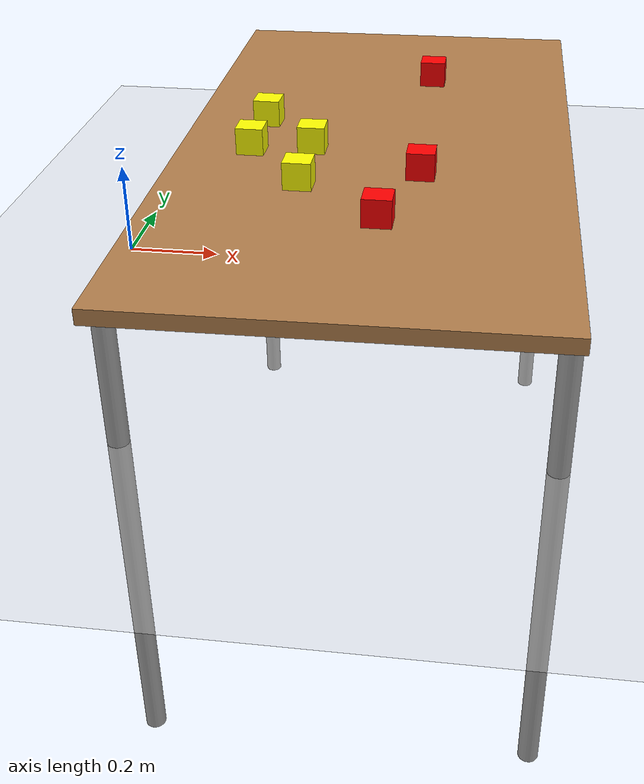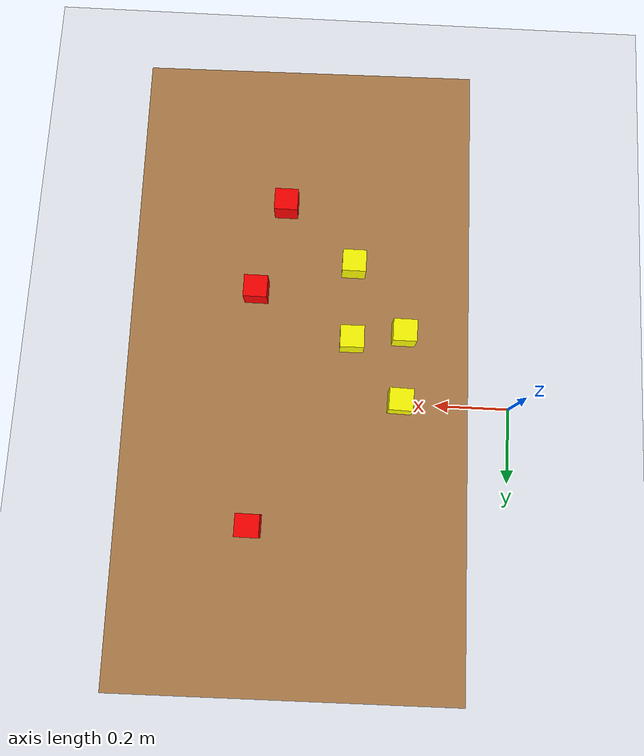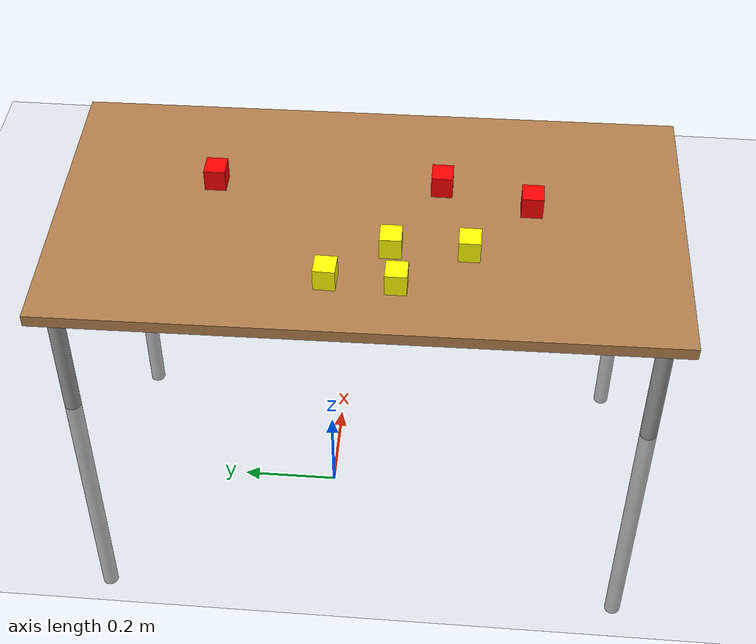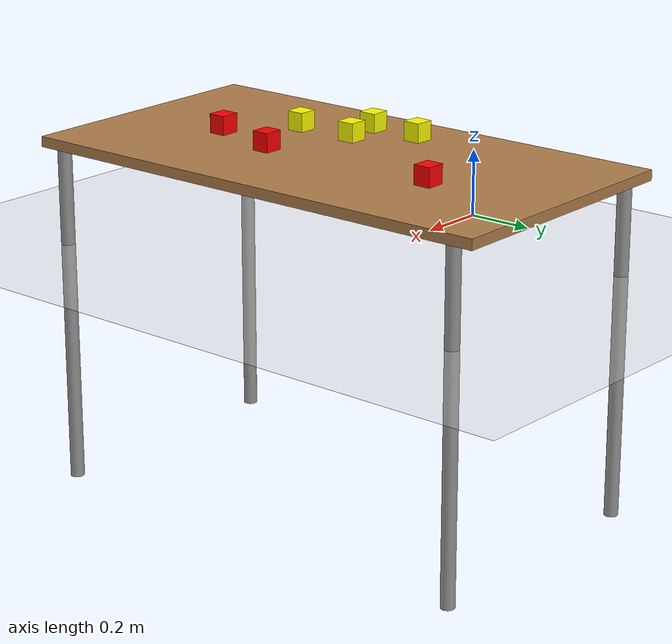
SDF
<sdf version="1.7">
 <world name="default">
  <light name="sun" type="directional">
   <pose>0 0 10 0 -0 0</pose>
   <diffuse>0.8 0.8 0.8 1</diffuse>
   <specular>0.2 0.2 0.2 1</specular>
   <attenuation>
    <range>1000</range>
    <constant>0.9</constant>
    <linear>0.01</linear>
    <quadratic>0.001</quadratic>
   </attenuation>
   <direction>-0.5 0.1 -0.9</direction>
   <spot><inner_angle>0</inner_angle><outer_angle>0</outer_angle><falloff>0</falloff></spot>
  </light>
  <model name="ground_plane">
   <static>1</static>
   <link name="link">
    <collision name="collision">
     <geometry><plane><normal>0 0 1</normal><size>100 100</size></plane></geometry>
     <surface>
      <contact><collide_bitmask>65535</collide_bitmask></contact>
      <friction><ode><mu>100</mu><mu2>50</mu2></ode></friction>
     </surface>
    </collision>
    <visual name="visual">
     <cast_shadows>0</cast_shadows>
     <geometry><plane><normal>0 0 1</normal><size>100 100</size></plane></geometry>
     <material>
      <script><uri>file://media/materials/scripts/gazebo.material</uri><name>Gazebo/Grey</name></script>
     </material>
    </visual>
   </link>
  </model>
  <gravity>0 0 -9.8</gravity>
  <magnetic_field>6e-06 2.3e-05 -4.2e-05</magnetic_field>
  <atmosphere type="adiabatic"/>
  <physics name="default_physics" default="0" type="ode">
   <max_step_size>0.001</max_step_size>
   <real_time_factor>1</real_time_factor>
   <real_time_update_rate>1000</real_time_update_rate>
  </physics>
  <scene><ambient>0.4 0.4 0.4 1</ambient><background>0.7 0.7 0.7 1</background><shadows>1</shadows></scene>
  <spherical_coordinates>
   <surface_model>EARTH_WGS84</surface_model>
   <latitude_deg>0</latitude_deg>
   <longitude_deg>0</longitude_deg>
   <elevation>0</elevation>
   <heading_deg>0</heading_deg>
  </spherical_coordinates>
  <model name="table">
   <static>1</static>
   <link name="link">
    <collision name="surface">
     <pose>0 0 1 0 -0 0</pose>
     <geometry><box><size>1.5 0.8 0.03</size></box></geometry>
     <surface><friction><ode><mu>0.6</mu><mu2>0.6</mu2></ode></friction></surface>
    </collision>
    <visual name="visual1">
     <pose>0 0 1 0 -0 0</pose>
     <geometry><box><size>1.5 0.8 0.03</size></box></geometry>
     <material>
      <script><uri>file://media/materials/scripts/gazebo.material</uri><name>Gazebo/Wood</name></script>
     </material>
    </visual>
    <collision name="front_left_leg">
     <pose>0.68 0.38 0.5 0 -0 0</pose>
     <geometry><cylinder><radius>0.02</radius><length>1</length></cylinder></geometry>
    </collision>
    <visual name="front_left_leg">
     <pose>0.68 0.38 0.5 0 -0 0</pose>
     <geometry><cylinder><radius>0.02</radius><length>1</length></cylinder></geometry>
     <material>
      <script><uri>file://media/materials/scripts/gazebo.material</uri><name>Gazebo/Grey</name></script>
     </material>
    </visual>
    <collision name="front_right_leg">
     <pose>0.68 -0.38 0.5 0 -0 0</pose>
     <geometry><cylinder><radius>0.02</radius><length>1</length></cylinder></geometry>
    </collision>
    <visual name="front_right_leg">
     <pose>0.68 -0.38 0.5 0 -0 0</pose>
     <geometry><cylinder><radius>0.02</radius><length>1</length></cylinder></geometry>
     <material>
      <script><uri>file://media/materials/scripts/gazebo.material</uri><name>Gazebo/Grey</name></script>
     </material>
    </visual>
    <collision name="back_right_leg">
     <pose>-0.68 -0.38 0.5 0 -0 0</pose>
     <geometry><cylinder><radius>0.02</radius><length>1</length></cylinder></geometry>
    </collision>
    <visual name="back_right_leg">
     <pose>-0.68 -0.38 0.5 0 -0 0</pose>
     <geometry><cylinder><radius>0.02</radius><length>1</length></cylinder></geometry>
     <material>
      <script><uri>file://media/materials/scripts/gazebo.material</uri><name>Gazebo/Grey</name></script>
     </material>
    </visual>
    <collision name="back_left_leg">
     <pose>-0.68 0.38 0.5 0 -0 0</pose>
     <geometry><cylinder><radius>0.02</radius><length>1</length></cylinder></geometry>
    </collision>
    <visual name="back_left_leg">
     <pose>-0.68 0.38 0.5 0 -0 0</pose>
     <geometry><cylinder><radius>0.02</radius><length>1</length></cylinder></geometry>
     <material>
      <script><uri>file://media/materials/scripts/gazebo.material</uri><name>Gazebo/Grey</name></script>
     </material>
    </visual>
   </link>
   <pose>0.566212 -0.031995 -0.712212 0 -0 1.5857</pose>
  </model>
  <model name="Untitled_clone">
   <link name="link_0">
    <inertial>
     <mass>0.00511254</mass>
     <inertia>
      <ixx>2.491e-05</ixx>
      <ixy>0</ixy>
      <ixz>0</ixz>
      <iyy>2.97e-05</iyy>
      <iyz>0</iyz>
      <izz>2.319e-05</izz>
     </inertia>
    </inertial>
    <visual name="visual">
     <geometry><box><size>0.05539 0.05172 0.055441</size></box></geometry>
     <material>
      <lighting>1</lighting>
      <script><uri>file://media/materials/scripts/gazebo.material</uri><name>Gazebo/Grey</name></script>
      <shader type="pixel"><normal_map>__default__</normal_map></shader>
      <ambient>1 0 0 0</ambient>
      <diffuse>1 0 0 1</diffuse>
      <specular>1 0.01 0 1</specular>
      <emissive>0 0 0 1</emissive>
     </material>
    </visual>
    <collision name="collision">
     <geometry><box><size>0.05539 0.05172 0.055441</size></box></geometry>
     <surface>
      <friction>
       <ode><mu>1</mu><mu2>1</mu2><fdir1>0 0 0</fdir1><slip1>0</slip1><slip2>0</slip2></ode>
       <torsional>
        <coefficient>1</coefficient>
        <patch_radius>0</patch_radius>
        <surface_radius>0</surface_radius>
        <use_patch_radius>1</use_patch_radius>
        <ode><slip>0</slip></ode>
       </torsional>
      </friction>
      <bounce><restitution_coefficient>0</restitution_coefficient><threshold>1e+06</threshold></bounce>
      <contact>
       <collide_without_contact>0</collide_without_contact>
       <collide_without_contact_bitmask>1</collide_without_contact_bitmask>
       <collide_bitmask>1</collide_bitmask>
       <ode>
        <soft_cfm>0</soft_cfm>
        <soft_erp>0.2</soft_erp>
        <kp>1e+13</kp>
        <kd>1</kd>
        <max_vel>0.01</max_vel>
        <min_depth>0</min_depth>
       </ode>
       <bullet>
        <split_impulse>1</split_impulse>
        <split_impulse_penetration_threshold>-0.01</split_impulse_penetration_threshold>
        <soft_cfm>0</soft_cfm>
        <soft_erp>0.2</soft_erp>
        <kp>1e+13</kp>
        <kd>1</kd>
       </bullet>
      </contact>
     </surface>
    </collision>
   </link>
   <static>0</static>
   <pose>0.614447 -0.418126 0.330509 -3.14159 -0 -3.14108</pose>
  </model>
  <model name="Untitled_clone_0">
   <link name="link_0">
    <inertial>
     <mass>0.00511254</mass>
     <inertia>
      <ixx>2.491e-05</ixx>
      <ixy>0</ixy>
      <ixz>0</ixz>
      <iyy>2.97e-05</iyy>
      <iyz>0</iyz>
      <izz>2.319e-05</izz>
     </inertia>
    </inertial>
    <visual name="visual">
     <geometry><box><size>0.05539 0.05172 0.055441</size></box></geometry>
     <material>
      <lighting>1</lighting>
      <script><uri>file://media/materials/scripts/gazebo.material</uri><name>Gazebo/Grey</name></script>
      <shader type="pixel"><normal_map>__default__</normal_map></shader>
      <ambient>1 0 0 0</ambient>
      <diffuse>1 0 0 1</diffuse>
      <specular>1 0.01 0 1</specular>
      <emissive>0 0 0 1</emissive>
     </material>
    </visual>
    <collision name="collision">
     <geometry><box><size>0.05539 0.05172 0.055441</size></box></geometry>
     <surface>
      <friction>
       <ode><mu>1</mu><mu2>1</mu2><fdir1>0 0 0</fdir1><slip1>0</slip1><slip2>0</slip2></ode>
       <torsional>
        <coefficient>1</coefficient>
        <patch_radius>0</patch_radius>
        <surface_radius>0</surface_radius>
        <use_patch_radius>1</use_patch_radius>
        <ode><slip>0</slip></ode>
       </torsional>
      </friction>
      <bounce><restitution_coefficient>0</restitution_coefficient><threshold>1e+06</threshold></bounce>
      <contact>
       <collide_without_contact>0</collide_without_contact>
       <collide_without_contact_bitmask>1</collide_without_contact_bitmask>
       <collide_bitmask>1</collide_bitmask>
       <ode>
        <soft_cfm>0</soft_cfm>
        <soft_erp>0.2</soft_erp>
        <kp>1e+13</kp>
        <kd>1</kd>
        <max_vel>0.01</max_vel>
        <min_depth>0</min_depth>
       </ode>
       <bullet>
        <split_impulse>1</split_impulse>
        <split_impulse_penetration_threshold>-0.01</split_impulse_penetration_threshold>
        <soft_cfm>0</soft_cfm>
        <soft_erp>0.2</soft_erp>
        <kp>1e+13</kp>
        <kd>1</kd>
       </bullet>
      </contact>
     </surface>
    </collision>
   </link>
   <static>0</static>
   <pose>0.653564 0.347624 0.330509 -3.14159 -0 -3.14108</pose>
  </model>
  <model name="Untitled_clone_1">
   <link name="link_0">
    <inertial>
     <mass>0.00511254</mass>
     <inertia>
      <ixx>2.491e-05</ixx>
      <ixy>0</ixy>
      <ixz>0</ixz>
      <iyy>2.97e-05</iyy>
      <iyz>0</iyz>
      <izz>2.319e-05</izz>
     </inertia>
    </inertial>
    <visual name="visual">
     <geometry><box><size>0.05539 0.05172 0.055441</size></box></geometry>
     <material>
      <lighting>1</lighting>
      <script><uri>file://media/materials/scripts/gazebo.material</uri><name>Gazebo/Grey</name></script>
      <shader type="pixel"><normal_map>__default__</normal_map></shader>
      <ambient>1 0 0 0</ambient>
      <diffuse>1 0 0 1</diffuse>
      <specular>1 0.01 0 1</specular>
      <emissive>0 0 0 1</emissive>
     </material>
    </visual>
    <collision name="collision">
     <geometry><box><size>0.05539 0.05172 0.055441</size></box></geometry>
     <surface>
      <friction>
       <ode><mu>1</mu><mu2>1</mu2><fdir1>0 0 0</fdir1><slip1>0</slip1><slip2>0</slip2></ode>
       <torsional>
        <coefficient>1</coefficient>
        <patch_radius>0</patch_radius>
        <surface_radius>0</surface_radius>
        <use_patch_radius>1</use_patch_radius>
        <ode><slip>0</slip></ode>
       </torsional>
      </friction>
      <bounce><restitution_coefficient>0</restitution_coefficient><threshold>1e+06</threshold></bounce>
      <contact>
       <collide_without_contact>0</collide_without_contact>
       <collide_without_contact_bitmask>1</collide_without_contact_bitmask>
       <collide_bitmask>1</collide_bitmask>
       <ode>
        <soft_cfm>0</soft_cfm>
        <soft_erp>0.2</soft_erp>
        <kp>1e+13</kp>
        <kd>1</kd>
        <max_vel>0.01</max_vel>
        <min_depth>0</min_depth>
       </ode>
       <bullet>
        <split_impulse>1</split_impulse>
        <split_impulse_penetration_threshold>-0.01</split_impulse_penetration_threshold>
        <soft_cfm>0</soft_cfm>
        <soft_erp>0.2</soft_erp>
        <kp>1e+13</kp>
        <kd>1</kd>
       </bullet>
      </contact>
     </surface>
    </collision>
   </link>
   <static>0</static>
   <pose>0.67276 -0.200747 0.330509 -3.14159 -0 -3.14108</pose>
  </model>
  <model name="Untitled">
   <link name="link_0">
    <inertial>
     <mass>0.00511254</mass>
     <inertia>
      <ixx>2.491e-05</ixx>
      <ixy>0</ixy>
      <ixz>0</ixz>
      <iyy>2.97e-05</iyy>
      <iyz>0</iyz>
      <izz>2.319e-05</izz>
     </inertia>
    </inertial>
    <visual name="visual">
     <geometry><box><size>0.05539 0.05172 0.055441</size></box></geometry>
     <material>
      <lighting>1</lighting>
      <script><uri>file://media/materials/scripts/gazebo.material</uri><name>Gazebo/Grey</name></script>
      <shader type="pixel"><normal_map>__default__</normal_map></shader>
      <ambient>1 1 0 0</ambient>
      <diffuse>1 1 0 0</diffuse>
      <specular>1 1 0 0</specular>
      <emissive>1 1 0 0</emissive>
     </material>
    </visual>
    <collision name="collision">
     <geometry><box><size>0.05539 0.05172 0.055441</size></box></geometry>
     <surface>
      <friction>
       <ode><mu>1</mu><mu2>1</mu2><fdir1>0 0 0</fdir1><slip1>0</slip1><slip2>0</slip2></ode>
       <torsional>
        <coefficient>1</coefficient>
        <patch_radius>0</patch_radius>
        <surface_radius>0</surface_radius>
        <use_patch_radius>1</use_patch_radius>
        <ode><slip>0</slip></ode>
       </torsional>
      </friction>
      <bounce><restitution_coefficient>0</restitution_coefficient><threshold>1e+06</threshold></bounce>
      <contact>
       <collide_without_contact>0</collide_without_contact>
       <collide_without_contact_bitmask>1</collide_without_contact_bitmask>
       <collide_bitmask>1</collide_bitmask>
       <ode>
        <soft_cfm>0</soft_cfm>
        <soft_erp>0.2</soft_erp>
        <kp>1e+13</kp>
        <kd>1</kd>
        <max_vel>0.01</max_vel>
        <min_depth>0</min_depth>
       </ode>
       <bullet>
        <split_impulse>1</split_impulse>
        <split_impulse_penetration_threshold>-0.01</split_impulse_penetration_threshold>
        <soft_cfm>0</soft_cfm>
        <soft_erp>0.2</soft_erp>
        <kp>1e+13</kp>
        <kd>1</kd>
       </bullet>
      </contact>
     </surface>
    </collision>
   </link>
   <static>0</static>
   <pose>0.445851 -0.275335 0.330509 -3.14159 -0 3.14159</pose>
  </model>
  <model name="Untitled_clone_2">
   <link name="link_0">
    <inertial>
     <mass>0.00511254</mass>
     <inertia>
      <ixx>2.491e-05</ixx>
      <ixy>0</ixy>
      <ixz>0</ixz>
      <iyy>2.97e-05</iyy>
      <iyz>0</iyz>
      <izz>2.319e-05</izz>
     </inertia>
    </inertial>
    <visual name="visual">
     <geometry><box><size>0.05539 0.05172 0.055441</size></box></geometry>
     <material>
      <lighting>1</lighting>
      <script><uri>file://media/materials/scripts/gazebo.material</uri><name>Gazebo/Grey</name></script>
      <shader type="pixel"><normal_map>__default__</normal_map></shader>
      <ambient>1 1 0 0</ambient>
      <diffuse>1 1 0 0</diffuse>
      <specular>1 1 0 0</specular>
      <emissive>1 1 0 0</emissive>
     </material>
    </visual>
    <collision name="collision">
     <geometry><box><size>0.05539 0.05172 0.055441</size></box></geometry>
     <surface>
      <friction>
       <ode><mu>1</mu><mu2>1</mu2><fdir1>0 0 0</fdir1><slip1>0</slip1><slip2>0</slip2></ode>
       <torsional>
        <coefficient>1</coefficient>
        <patch_radius>0</patch_radius>
        <surface_radius>0</surface_radius>
        <use_patch_radius>1</use_patch_radius>
        <ode><slip>0</slip></ode>
       </torsional>
      </friction>
      <bounce><restitution_coefficient>0</restitution_coefficient><threshold>1e+06</threshold></bounce>
      <contact>
       <collide_without_contact>0</collide_without_contact>
       <collide_without_contact_bitmask>1</collide_without_contact_bitmask>
       <collide_bitmask>1</collide_bitmask>
       <ode>
        <soft_cfm>0</soft_cfm>
        <soft_erp>0.2</soft_erp>
        <kp>1e+13</kp>
        <kd>1</kd>
        <max_vel>0.01</max_vel>
        <min_depth>0</min_depth>
       </ode>
       <bullet>
        <split_impulse>1</split_impulse>
        <split_impulse_penetration_threshold>-0.01</split_impulse_penetration_threshold>
        <soft_cfm>0</soft_cfm>
        <soft_erp>0.2</soft_erp>
        <kp>1e+13</kp>
        <kd>1</kd>
       </bullet>
      </contact>
     </surface>
    </collision>
   </link>
   <static>0</static>
   <pose>0.442339 -0.09278 0.330505 3.14156 -2.1e-05 -3.12606</pose>
  </model>
  <model name="Untitled_clone_3">
   <link name="link_0">
    <inertial>
     <mass>0.00511254</mass>
     <inertia>
      <ixx>2.491e-05</ixx>
      <ixy>0</ixy>
      <ixz>0</ixz>
      <iyy>2.97e-05</iyy>
      <iyz>0</iyz>
      <izz>2.319e-05</izz>
     </inertia>
    </inertial>
    <visual name="visual">
     <geometry><box><size>0.05539 0.05172 0.055441</size></box></geometry>
     <material>
      <lighting>1</lighting>
      <script><uri>file://media/materials/scripts/gazebo.material</uri><name>Gazebo/Grey</name></script>
      <shader type="pixel"><normal_map>__default__</normal_map></shader>
      <ambient>1 1 0 0</ambient>
      <diffuse>1 1 0 0</diffuse>
      <specular>1 1 0 0</specular>
      <emissive>1 1 0 0</emissive>
     </material>
    </visual>
    <collision name="collision">
     <geometry><box><size>0.05539 0.05172 0.055441</size></box></geometry>
     <surface>
      <friction>
       <ode><mu>1</mu><mu2>1</mu2><fdir1>0 0 0</fdir1><slip1>0</slip1><slip2>0</slip2></ode>
       <torsional>
        <coefficient>1</coefficient>
        <patch_radius>0</patch_radius>
        <surface_radius>0</surface_radius>
        <use_patch_radius>1</use_patch_radius>
        <ode><slip>0</slip></ode>
       </torsional>
      </friction>
      <bounce><restitution_coefficient>0</restitution_coefficient><threshold>1e+06</threshold></bounce>
      <contact>
       <collide_without_contact>0</collide_without_contact>
       <collide_without_contact_bitmask>1</collide_without_contact_bitmask>
       <collide_bitmask>1</collide_bitmask>
       <ode>
        <soft_cfm>0</soft_cfm>
        <soft_erp>0.2</soft_erp>
        <kp>1e+13</kp>
        <kd>1</kd>
        <max_vel>0.01</max_vel>
        <min_depth>0</min_depth>
       </ode>
       <bullet>
        <split_impulse>1</split_impulse>
        <split_impulse_penetration_threshold>-0.01</split_impulse_penetration_threshold>
        <soft_cfm>0</soft_cfm>
        <soft_erp>0.2</soft_erp>
        <kp>1e+13</kp>
        <kd>1</kd>
       </bullet>
      </contact>
     </surface>
    </collision>
   </link>
   <static>0</static>
   <pose>0.324214 0.04779 0.330504 -3.14157 2.4e-05 3.11946</pose>
  </model>
  <model name="Untitled_clone_4">
   <link name="link_0">
    <inertial>
     <mass>0.00511254</mass>
     <inertia>
      <ixx>2.491e-05</ixx>
      <ixy>0</ixy>
      <ixz>0</ixz>
      <iyy>2.97e-05</iyy>
      <iyz>0</iyz>
      <izz>2.319e-05</izz>
     </inertia>
    </inertial>
    <visual name="visual">
     <geometry><box><size>0.05539 0.05172 0.055441</size></box></geometry>
     <material>
      <lighting>1</lighting>
      <script><uri>file://media/materials/scripts/gazebo.material</uri><name>Gazebo/Grey</name></script>
      <shader type="pixel"><normal_map>__default__</normal_map></shader>
      <ambient>1 1 0 0</ambient>
      <diffuse>1 1 0 0</diffuse>
      <specular>1 1 0 0</specular>
      <emissive>1 1 0 0</emissive>
     </material>
    </visual>
    <collision name="collision">
     <geometry><box><size>0.05539 0.05172 0.055441</size></box></geometry>
     <surface>
      <friction>
       <ode><mu>1</mu><mu2>1</mu2><fdir1>0 0 0</fdir1><slip1>0</slip1><slip2>0</slip2></ode>
       <torsional>
        <coefficient>1</coefficient>
        <patch_radius>0</patch_radius>
        <surface_radius>0</surface_radius>
        <use_patch_radius>1</use_patch_radius>
        <ode><slip>0</slip></ode>
       </torsional>
      </friction>
      <bounce><restitution_coefficient>0</restitution_coefficient><threshold>1e+06</threshold></bounce>
      <contact>
       <collide_without_contact>0</collide_without_contact>
       <collide_without_contact_bitmask>1</collide_without_contact_bitmask>
       <collide_bitmask>1</collide_bitmask>
       <ode>
        <soft_cfm>0</soft_cfm>
        <soft_erp>0.2</soft_erp>
        <kp>1e+13</kp>
        <kd>1</kd>
        <max_vel>0.01</max_vel>
        <min_depth>0</min_depth>
       </ode>
       <bullet>
        <split_impulse>1</split_impulse>
        <split_impulse_penetration_threshold>-0.01</split_impulse_penetration_threshold>
        <soft_cfm>0</soft_cfm>
        <soft_erp>0.2</soft_erp>
        <kp>1e+13</kp>
        <kd>1</kd>
       </bullet>
      </contact>
     </surface>
    </collision>
   </link>
   <static>0</static>
   <pose>0.321183 -0.114274 0.330509 -3.14159 -0 3.14159</pose>
  </model>
 </world>
</sdf>
